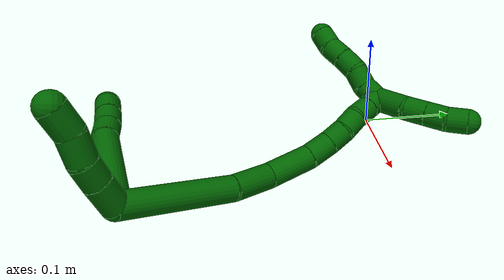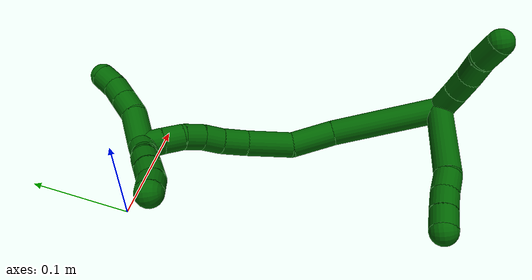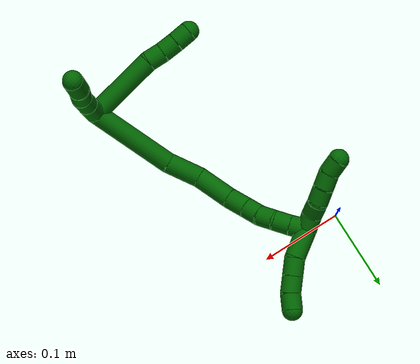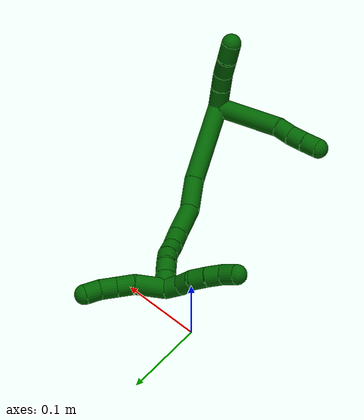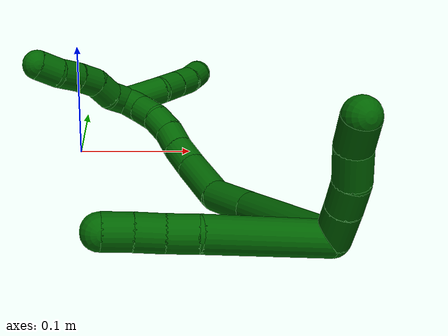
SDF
<sdf version="1.7">
 <world name="default">
  <model name="6">
   <static>0</static>
   <link name="6">
    <collision name="collision-cylinder-e_1_2_8">
     <pose>-0.03291 0.029757 -0.000173 -1.5766 -0.835656 0.839971</pose>
     <geometry><cylinder><radius>0.0125</radius><length>0.088738</length></cylinder></geometry>
     <surface>
      <friction><ode><mu>1.16</mu><mu2>1.16</mu2><slip1>0</slip1><slip2>0</slip2></ode></friction>
      <contact><ode><kp>1e+06</kp><kd>1</kd><max_vel>0</max_vel><min_depth>0.001</min_depth></ode></contact>
     </surface>
    </collision>
    <visual name="visual-cylinder-e_1_2_8">
     <pose>-0.03291 0.029757 -0.000173 -1.5766 -0.835656 0.839971</pose>
     <geometry><cylinder><radius>0.0125</radius><length>0.088738</length></cylinder></geometry>
     <material><ambient>0 0.392157 0.003922 1</ambient></material>
    </visual>
    <collision name="collision-cylinder-e_2_8_9">
     <pose>-0.073807 0.065797 -0.002733 -1.93396 -0.871306 1.1873</pose>
     <geometry><cylinder><radius>0.0125</radius><length>0.020877</length></cylinder></geometry>
     <surface>
      <friction><ode><mu>1.16</mu><mu2>1.16</mu2><slip1>0</slip1><slip2>0</slip2></ode></friction>
      <contact><ode><kp>1e+06</kp><kd>1</kd><max_vel>0</max_vel><min_depth>0.001</min_depth></ode></contact>
     </surface>
    </collision>
    <visual name="visual-cylinder-e_2_8_9">
     <pose>-0.073807 0.065797 -0.002733 -1.93396 -0.871306 1.1873</pose>
     <geometry><cylinder><radius>0.0125</radius><length>0.020877</length></cylinder></geometry>
     <material><ambient>0 0.392157 0.003922 1</ambient></material>
    </visual>
    <collision name="collision-cylinder-e_3_9_10">
     <pose>-0.089316 0.078722 -0.006415 -1.76329 -0.838122 0.991275</pose>
     <geometry><cylinder><radius>0.0125</radius><length>0.020238</length></cylinder></geometry>
     <surface>
      <friction><ode><mu>1.16</mu><mu2>1.16</mu2><slip1>0</slip1><slip2>0</slip2></ode></friction>
      <contact><ode><kp>1e+06</kp><kd>1</kd><max_vel>0</max_vel><min_depth>0.001</min_depth></ode></contact>
     </surface>
    </collision>
    <visual name="visual-cylinder-e_3_9_10">
     <pose>-0.089316 0.078722 -0.006415 -1.76329 -0.838122 0.991275</pose>
     <geometry><cylinder><radius>0.0125</radius><length>0.020238</length></cylinder></geometry>
     <material><ambient>0 0.392157 0.003922 1</ambient></material>
    </visual>
    <collision name="collision-cylinder-e_4_10_6">
     <pose>-0.104578 0.091744 -0.008661 -1.71877 -0.876036 0.995448</pose>
     <geometry><cylinder><radius>0.0125</radius><length>0.020148</length></cylinder></geometry>
     <surface>
      <friction><ode><mu>1.16</mu><mu2>1.16</mu2><slip1>0</slip1><slip2>0</slip2></ode></friction>
      <contact><ode><kp>1e+06</kp><kd>1</kd><max_vel>0</max_vel><min_depth>0.001</min_depth></ode></contact>
     </surface>
    </collision>
    <visual name="visual-cylinder-e_4_10_6">
     <pose>-0.104578 0.091744 -0.008661 -1.71877 -0.876036 0.995448</pose>
     <geometry><cylinder><radius>0.0125</radius><length>0.020148</length></cylinder></geometry>
     <material><ambient>0 0.392157 0.003922 1</ambient></material>
    </visual>
    <collision name="collision-cylinder-e_1_2_11">
     <pose>0.006728 0.009364 0.008479 -0.834945 0.489348 -0.220586</pose>
     <geometry><cylinder><radius>0.0125</radius><length>0.028625</length></cylinder></geometry>
     <surface>
      <friction><ode><mu>1.16</mu><mu2>1.16</mu2><slip1>0</slip1><slip2>0</slip2></ode></friction>
      <contact><ode><kp>1e+06</kp><kd>1</kd><max_vel>0</max_vel><min_depth>0.001</min_depth></ode></contact>
     </surface>
    </collision>
    <visual name="visual-cylinder-e_1_2_11">
     <pose>0.006728 0.009364 0.008479 -0.834945 0.489348 -0.220586</pose>
     <geometry><cylinder><radius>0.0125</radius><length>0.028625</length></cylinder></geometry>
     <material><ambient>0 0.392157 0.003922 1</ambient></material>
    </visual>
    <collision name="collision-cylinder-e_2_11_12">
     <pose>0.018561 0.026156 0.023114 -0.878815 0.486787 -0.232394</pose>
     <geometry><cylinder><radius>0.0125</radius><length>0.021827</length></cylinder></geometry>
     <surface>
      <friction><ode><mu>1.16</mu><mu2>1.16</mu2><slip1>0</slip1><slip2>0</slip2></ode></friction>
      <contact><ode><kp>1e+06</kp><kd>1</kd><max_vel>0</max_vel><min_depth>0.001</min_depth></ode></contact>
     </surface>
    </collision>
    <visual name="visual-cylinder-e_2_11_12">
     <pose>0.018561 0.026156 0.023114 -0.878815 0.486787 -0.232394</pose>
     <geometry><cylinder><radius>0.0125</radius><length>0.021827</length></cylinder></geometry>
     <material><ambient>0 0.392157 0.003922 1</ambient></material>
    </visual>
    <collision name="collision-cylinder-e_3_12_13">
     <pose>0.028465 0.043849 0.034516 -1.09829 0.39445 -0.243347</pose>
     <geometry><cylinder><radius>0.0125</radius><length>0.024977</length></cylinder></geometry>
     <surface>
      <friction><ode><mu>1.16</mu><mu2>1.16</mu2><slip1>0</slip1><slip2>0</slip2></ode></friction>
      <contact><ode><kp>1e+06</kp><kd>1</kd><max_vel>0</max_vel><min_depth>0.001</min_depth></ode></contact>
     </surface>
    </collision>
    <visual name="visual-cylinder-e_3_12_13">
     <pose>0.028465 0.043849 0.034516 -1.09829 0.39445 -0.243347</pose>
     <geometry><cylinder><radius>0.0125</radius><length>0.024977</length></cylinder></geometry>
     <material><ambient>0 0.392157 0.003922 1</ambient></material>
    </visual>
    <collision name="collision-cylinder-e_4_13_5">
     <pose>0.038016 0.062627 0.04724 -0.850049 0.397099 -0.181631</pose>
     <geometry><cylinder><radius>0.0125</radius><length>0.024571</length></cylinder></geometry>
     <surface>
      <friction><ode><mu>1.16</mu><mu2>1.16</mu2><slip1>0</slip1><slip2>0</slip2></ode></friction>
      <contact><ode><kp>1e+06</kp><kd>1</kd><max_vel>0</max_vel><min_depth>0.001</min_depth></ode></contact>
     </surface>
    </collision>
    <visual name="visual-cylinder-e_4_13_5">
     <pose>0.038016 0.062627 0.04724 -0.850049 0.397099 -0.181631</pose>
     <geometry><cylinder><radius>0.0125</radius><length>0.024571</length></cylinder></geometry>
     <material><ambient>0 0.392157 0.003922 1</ambient></material>
    </visual>
    <collision name="collision-cylinder-e_1_2_14">
     <pose>-0.006341 0.006561 -0.052258 -3.0167 -0.119827 1.52933</pose>
     <geometry><cylinder><radius>0.0125</radius><length>0.106098</length></cylinder></geometry>
     <surface>
      <friction><ode><mu>1.16</mu><mu2>1.16</mu2><slip1>0</slip1><slip2>0</slip2></ode></friction>
      <contact><ode><kp>1e+06</kp><kd>1</kd><max_vel>0</max_vel><min_depth>0.001</min_depth></ode></contact>
     </surface>
    </collision>
    <visual name="visual-cylinder-e_1_2_14">
     <pose>-0.006341 0.006561 -0.052258 -3.0167 -0.119827 1.52933</pose>
     <geometry><cylinder><radius>0.0125</radius><length>0.106098</length></cylinder></geometry>
     <material><ambient>0 0.392157 0.003922 1</ambient></material>
    </visual>
    <collision name="collision-cylinder-e_2_14_15">
     <pose>-0.017076 0.018955 -0.1244 -2.85618 -0.208909 1.26069</pose>
     <geometry><cylinder><radius>0.0125</radius><length>0.042364</length></cylinder></geometry>
     <surface>
      <friction><ode><mu>1.16</mu><mu2>1.16</mu2><slip1>0</slip1><slip2>0</slip2></ode></friction>
      <contact><ode><kp>1e+06</kp><kd>1</kd><max_vel>0</max_vel><min_depth>0.001</min_depth></ode></contact>
     </surface>
    </collision>
    <visual name="visual-cylinder-e_2_14_15">
     <pose>-0.017076 0.018955 -0.1244 -2.85618 -0.208909 1.26069</pose>
     <geometry><cylinder><radius>0.0125</radius><length>0.042364</length></cylinder></geometry>
     <material><ambient>0 0.392157 0.003922 1</ambient></material>
    </visual>
    <collision name="collision-cylinder-e_3_15_16">
     <pose>-0.019084 0.034026 -0.164946 -2.72123 0.105007 -0.483059</pose>
     <geometry><cylinder><radius>0.0125</radius><length>0.045517</length></cylinder></geometry>
     <surface>
      <friction><ode><mu>1.16</mu><mu2>1.16</mu2><slip1>0</slip1><slip2>0</slip2></ode></friction>
      <contact><ode><kp>1e+06</kp><kd>1</kd><max_vel>0</max_vel><min_depth>0.001</min_depth></ode></contact>
     </surface>
    </collision>
    <visual name="visual-cylinder-e_3_15_16">
     <pose>-0.019084 0.034026 -0.164946 -2.72123 0.105007 -0.483059</pose>
     <geometry><cylinder><radius>0.0125</radius><length>0.045517</length></cylinder></geometry>
     <material><ambient>0 0.392157 0.003922 1</ambient></material>
    </visual>
    <collision name="collision-cylinder-e_4_16_17">
     <pose>-0.015167 0.050301 -0.196178 -2.55406 0.12004 -0.392173</pose>
     <geometry><cylinder><radius>0.0125</radius><length>0.02558</length></cylinder></geometry>
     <surface>
      <friction><ode><mu>1.16</mu><mu2>1.16</mu2><slip1>0</slip1><slip2>0</slip2></ode></friction>
      <contact><ode><kp>1e+06</kp><kd>1</kd><max_vel>0</max_vel><min_depth>0.001</min_depth></ode></contact>
     </surface>
    </collision>
    <visual name="visual-cylinder-e_4_16_17">
     <pose>-0.015167 0.050301 -0.196178 -2.55406 0.12004 -0.392173</pose>
     <geometry><cylinder><radius>0.0125</radius><length>0.02558</length></cylinder></geometry>
     <material><ambient>0 0.392157 0.003922 1</ambient></material>
    </visual>
    <collision name="collision-cylinder-e_5_17_18">
     <pose>-0.011402 0.063774 -0.214275 -2.43436 0.221754 -0.585862</pose>
     <geometry><cylinder><radius>0.0125</radius><length>0.020304</length></cylinder></geometry>
     <surface>
      <friction><ode><mu>1.16</mu><mu2>1.16</mu2><slip1>0</slip1><slip2>0</slip2></ode></friction>
      <contact><ode><kp>1e+06</kp><kd>1</kd><max_vel>0</max_vel><min_depth>0.001</min_depth></ode></contact>
     </surface>
    </collision>
    <visual name="visual-cylinder-e_5_17_18">
     <pose>-0.011402 0.063774 -0.214275 -2.43436 0.221754 -0.585862</pose>
     <geometry><cylinder><radius>0.0125</radius><length>0.020304</length></cylinder></geometry>
     <material><ambient>0 0.392157 0.003922 1</ambient></material>
    </visual>
    <collision name="collision-cylinder-e_6_18_19">
     <pose>-0.00894 0.077193 -0.228993 -2.37071 0.022839 -0.056278</pose>
     <geometry><cylinder><radius>0.0125</radius><length>0.020052</length></cylinder></geometry>
     <surface>
      <friction><ode><mu>1.16</mu><mu2>1.16</mu2><slip1>0</slip1><slip2>0</slip2></ode></friction>
      <contact><ode><kp>1e+06</kp><kd>1</kd><max_vel>0</max_vel><min_depth>0.001</min_depth></ode></contact>
     </surface>
    </collision>
    <visual name="visual-cylinder-e_6_18_19">
     <pose>-0.00894 0.077193 -0.228993 -2.37071 0.022839 -0.056278</pose>
     <geometry><cylinder><radius>0.0125</radius><length>0.020052</length></cylinder></geometry>
     <material><ambient>0 0.392157 0.003922 1</ambient></material>
    </visual>
    <collision name="collision-cylinder-e_7_19_20">
     <pose>-0.010243 0.089531 -0.244534 -2.57149 -0.153183 0.512274</pose>
     <geometry><cylinder><radius>0.0125</radius><length>0.020075</length></cylinder></geometry>
     <surface>
      <friction><ode><mu>1.16</mu><mu2>1.16</mu2><slip1>0</slip1><slip2>0</slip2></ode></friction>
      <contact><ode><kp>1e+06</kp><kd>1</kd><max_vel>0</max_vel><min_depth>0.001</min_depth></ode></contact>
     </surface>
    </collision>
    <visual name="visual-cylinder-e_7_19_20">
     <pose>-0.010243 0.089531 -0.244534 -2.57149 -0.153183 0.512274</pose>
     <geometry><cylinder><radius>0.0125</radius><length>0.020075</length></cylinder></geometry>
     <material><ambient>0 0.392157 0.003922 1</ambient></material>
    </visual>
    <collision name="collision-cylinder-e_8_20_1">
     <pose>-0.013759 0.100487 -0.260933 -2.5335 -0.199672 0.618018</pose>
     <geometry><cylinder><radius>0.0125</radius><length>0.020009</length></cylinder></geometry>
     <surface>
      <friction><ode><mu>1.16</mu><mu2>1.16</mu2><slip1>0</slip1><slip2>0</slip2></ode></friction>
      <contact><ode><kp>1e+06</kp><kd>1</kd><max_vel>0</max_vel><min_depth>0.001</min_depth></ode></contact>
     </surface>
    </collision>
    <visual name="visual-cylinder-e_8_20_1">
     <pose>-0.013759 0.100487 -0.260933 -2.5335 -0.199672 0.618018</pose>
     <geometry><cylinder><radius>0.0125</radius><length>0.020009</length></cylinder></geometry>
     <material><ambient>0 0.392157 0.003922 1</ambient></material>
    </visual>
    <collision name="collision-cylinder-e_1_1_21">
     <pose>0.00069 0.09927 -0.274953 2.29005 1.06669 1.83159</pose>
     <geometry><cylinder><radius>0.0125</radius><length>0.037535</length></cylinder></geometry>
     <surface>
      <friction><ode><mu>1.16</mu><mu2>1.16</mu2><slip1>0</slip1><slip2>0</slip2></ode></friction>
      <contact><ode><kp>1e+06</kp><kd>1</kd><max_vel>0</max_vel><min_depth>0.001</min_depth></ode></contact>
     </surface>
    </collision>
    <visual name="visual-cylinder-e_1_1_21">
     <pose>0.00069 0.09927 -0.274953 2.29005 1.06669 1.83159</pose>
     <geometry><cylinder><radius>0.0125</radius><length>0.037535</length></cylinder></geometry>
     <material><ambient>0 0.392157 0.003922 1</ambient></material>
    </visual>
    <collision name="collision-cylinder-e_2_21_22">
     <pose>0.025278 0.088911 -0.28721 2.62879 0.846679 2.08766</pose>
     <geometry><cylinder><radius>0.0125</radius><length>0.021775</length></cylinder></geometry>
     <surface>
      <friction><ode><mu>1.16</mu><mu2>1.16</mu2><slip1>0</slip1><slip2>0</slip2></ode></friction>
      <contact><ode><kp>1e+06</kp><kd>1</kd><max_vel>0</max_vel><min_depth>0.001</min_depth></ode></contact>
     </surface>
    </collision>
    <visual name="visual-cylinder-e_2_21_22">
     <pose>0.025278 0.088911 -0.28721 2.62879 0.846679 2.08766</pose>
     <geometry><cylinder><radius>0.0125</radius><length>0.021775</length></cylinder></geometry>
     <material><ambient>0 0.392157 0.003922 1</ambient></material>
    </visual>
    <collision name="collision-cylinder-e_3_22_23">
     <pose>0.04117 0.082046 -0.299431 2.63085 0.849368 2.09443</pose>
     <geometry><cylinder><radius>0.0125</radius><length>0.020605</length></cylinder></geometry>
     <surface>
      <friction><ode><mu>1.16</mu><mu2>1.16</mu2><slip1>0</slip1><slip2>0</slip2></ode></friction>
      <contact><ode><kp>1e+06</kp><kd>1</kd><max_vel>0</max_vel><min_depth>0.001</min_depth></ode></contact>
     </surface>
    </collision>
    <visual name="visual-cylinder-e_3_22_23">
     <pose>0.04117 0.082046 -0.299431 2.63085 0.849368 2.09443</pose>
     <geometry><cylinder><radius>0.0125</radius><length>0.020605</length></cylinder></geometry>
     <material><ambient>0 0.392157 0.003922 1</ambient></material>
    </visual>
    <collision name="collision-cylinder-e_4_23_4">
     <pose>0.055727 0.077147 -0.312568 2.92659 0.746687 2.60392</pose>
     <geometry><cylinder><radius>0.0125</radius><length>0.020085</length></cylinder></geometry>
     <surface>
      <friction><ode><mu>1.16</mu><mu2>1.16</mu2><slip1>0</slip1><slip2>0</slip2></ode></friction>
      <contact><ode><kp>1e+06</kp><kd>1</kd><max_vel>0</max_vel><min_depth>0.001</min_depth></ode></contact>
     </surface>
    </collision>
    <visual name="visual-cylinder-e_4_23_4">
     <pose>0.055727 0.077147 -0.312568 2.92659 0.746687 2.60392</pose>
     <geometry><cylinder><radius>0.0125</radius><length>0.020085</length></cylinder></geometry>
     <material><ambient>0 0.392157 0.003922 1</ambient></material>
    </visual>
    <collision name="collision-cylinder-e_1_1_24">
     <pose>-0.020834 0.113359 -0.264373 -1.00585 -0.534184 0.298806</pose>
     <geometry><cylinder><radius>0.0125</radius><length>0.02</length></cylinder></geometry>
     <surface>
      <friction><ode><mu>1.16</mu><mu2>1.16</mu2><slip1>0</slip1><slip2>0</slip2></ode></friction>
      <contact><ode><kp>1e+06</kp><kd>1</kd><max_vel>0</max_vel><min_depth>0.001</min_depth></ode></contact>
     </surface>
    </collision>
    <visual name="visual-cylinder-e_1_1_24">
     <pose>-0.020834 0.113359 -0.264373 -1.00585 -0.534184 0.298806</pose>
     <geometry><cylinder><radius>0.0125</radius><length>0.02</length></cylinder></geometry>
     <material><ambient>0 0.392157 0.003922 1</ambient></material>
    </visual>
    <collision name="collision-cylinder-e_2_24_25">
     <pose>-0.028074 0.129574 -0.255845 -1.15778 -0.216491 0.141812</pose>
     <geometry><cylinder><radius>0.0125</radius><length>0.02</length></cylinder></geometry>
     <surface>
      <friction><ode><mu>1.16</mu><mu2>1.16</mu2><slip1>0</slip1><slip2>0</slip2></ode></friction>
      <contact><ode><kp>1e+06</kp><kd>1</kd><max_vel>0</max_vel><min_depth>0.001</min_depth></ode></contact>
     </surface>
    </collision>
    <visual name="visual-cylinder-e_2_24_25">
     <pose>-0.028074 0.129574 -0.255845 -1.15778 -0.216491 0.141812</pose>
     <geometry><cylinder><radius>0.0125</radius><length>0.02</length></cylinder></geometry>
     <material><ambient>0 0.392157 0.003922 1</ambient></material>
    </visual>
    <collision name="collision-cylinder-e_3_25_26">
     <pose>-0.03536 0.145851 -0.24747 -1.02489 -0.539575 0.308662</pose>
     <geometry><cylinder><radius>0.0125</radius><length>0.02</length></cylinder></geometry>
     <surface>
      <friction><ode><mu>1.16</mu><mu2>1.16</mu2><slip1>0</slip1><slip2>0</slip2></ode></friction>
      <contact><ode><kp>1e+06</kp><kd>1</kd><max_vel>0</max_vel><min_depth>0.001</min_depth></ode></contact>
     </surface>
    </collision>
    <visual name="visual-cylinder-e_3_25_26">
     <pose>-0.03536 0.145851 -0.24747 -1.02489 -0.539575 0.308662</pose>
     <geometry><cylinder><radius>0.0125</radius><length>0.02</length></cylinder></geometry>
     <material><ambient>0 0.392157 0.003922 1</ambient></material>
    </visual>
    <collision name="collision-cylinder-e_4_26_27">
     <pose>-0.0464 0.159985 -0.238669 -1.00203 -0.631429 0.354006</pose>
     <geometry><cylinder><radius>0.0125</radius><length>0.02</length></cylinder></geometry>
     <surface>
      <friction><ode><mu>1.16</mu><mu2>1.16</mu2><slip1>0</slip1><slip2>0</slip2></ode></friction>
      <contact><ode><kp>1e+06</kp><kd>1</kd><max_vel>0</max_vel><min_depth>0.001</min_depth></ode></contact>
     </surface>
    </collision>
    <visual name="visual-cylinder-e_4_26_27">
     <pose>-0.0464 0.159985 -0.238669 -1.00203 -0.631429 0.354006</pose>
     <geometry><cylinder><radius>0.0125</radius><length>0.02</length></cylinder></geometry>
     <material><ambient>0 0.392157 0.003922 1</ambient></material>
    </visual>
    <collision name="collision-cylinder-e_5_27_3">
     <pose>-0.057462 0.175069 -0.232134 -1.31266 -0.542 0.42164</pose>
     <geometry><cylinder><radius>0.0125</radius><length>0.02</length></cylinder></geometry>
     <surface>
      <friction><ode><mu>1.16</mu><mu2>1.16</mu2><slip1>0</slip1><slip2>0</slip2></ode></friction>
      <contact><ode><kp>1e+06</kp><kd>1</kd><max_vel>0</max_vel><min_depth>0.001</min_depth></ode></contact>
     </surface>
    </collision>
    <visual name="visual-cylinder-e_5_27_3">
     <pose>-0.057462 0.175069 -0.232134 -1.31266 -0.542 0.42164</pose>
     <geometry><cylinder><radius>0.0125</radius><length>0.02</length></cylinder></geometry>
     <material><ambient>0 0.392157 0.003922 1</ambient></material>
    </visual>
    <collision name="collision-sphere-3">
     <pose>-0.06262 0.183352 -0.229947 0 -0 0</pose>
     <geometry><sphere><radius>0.0125</radius></sphere></geometry>
     <surface>
      <friction><ode><mu>1.16</mu><mu2>1.16</mu2><slip1>0</slip1><slip2>0</slip2></ode></friction>
      <contact><ode><kp>1e+06</kp><kd>1</kd><max_vel>0</max_vel><min_depth>0.001</min_depth></ode></contact>
     </surface>
    </collision>
    <visual name="visual-sphere-3">
     <pose>-0.06262 0.183352 -0.229947 0 -0 0</pose>
     <geometry><sphere><radius>0.0125</radius></sphere></geometry>
     <material><ambient>0 0.392157 0.003922 1</ambient></material>
    </visual>
    <collision name="collision-sphere-27">
     <pose>-0.052303 0.166786 -0.234321 0 -0 0</pose>
     <geometry><sphere><radius>0.0125</radius></sphere></geometry>
     <surface>
      <friction><ode><mu>1.16</mu><mu2>1.16</mu2><slip1>0</slip1><slip2>0</slip2></ode></friction>
      <contact><ode><kp>1e+06</kp><kd>1</kd><max_vel>0</max_vel><min_depth>0.001</min_depth></ode></contact>
     </surface>
    </collision>
    <visual name="visual-sphere-27">
     <pose>-0.052303 0.166786 -0.234321 0 -0 0</pose>
     <geometry><sphere><radius>0.0125</radius></sphere></geometry>
     <material><ambient>0 0.392157 0.003922 1</ambient></material>
    </visual>
    <collision name="collision-sphere-26">
     <pose>-0.040497 0.153184 -0.243016 0 -0 0</pose>
     <geometry><sphere><radius>0.0125</radius></sphere></geometry>
     <surface>
      <friction><ode><mu>1.16</mu><mu2>1.16</mu2><slip1>0</slip1><slip2>0</slip2></ode></friction>
      <contact><ode><kp>1e+06</kp><kd>1</kd><max_vel>0</max_vel><min_depth>0.001</min_depth></ode></contact>
     </surface>
    </collision>
    <visual name="visual-sphere-26">
     <pose>-0.040497 0.153184 -0.243016 0 -0 0</pose>
     <geometry><sphere><radius>0.0125</radius></sphere></geometry>
     <material><ambient>0 0.392157 0.003922 1</ambient></material>
    </visual>
    <collision name="collision-sphere-25">
     <pose>-0.030222 0.138519 -0.251925 0 -0 0</pose>
     <geometry><sphere><radius>0.0125</radius></sphere></geometry>
     <surface>
      <friction><ode><mu>1.16</mu><mu2>1.16</mu2><slip1>0</slip1><slip2>0</slip2></ode></friction>
      <contact><ode><kp>1e+06</kp><kd>1</kd><max_vel>0</max_vel><min_depth>0.001</min_depth></ode></contact>
     </surface>
    </collision>
    <visual name="visual-sphere-25">
     <pose>-0.030222 0.138519 -0.251925 0 -0 0</pose>
     <geometry><sphere><radius>0.0125</radius></sphere></geometry>
     <material><ambient>0 0.392157 0.003922 1</ambient></material>
    </visual>
    <collision name="collision-sphere-24">
     <pose>-0.025926 0.120628 -0.259765 0 -0 0</pose>
     <geometry><sphere><radius>0.0125</radius></sphere></geometry>
     <surface>
      <friction><ode><mu>1.16</mu><mu2>1.16</mu2><slip1>0</slip1><slip2>0</slip2></ode></friction>
      <contact><ode><kp>1e+06</kp><kd>1</kd><max_vel>0</max_vel><min_depth>0.001</min_depth></ode></contact>
     </surface>
    </collision>
    <visual name="visual-sphere-24">
     <pose>-0.025926 0.120628 -0.259765 0 -0 0</pose>
     <geometry><sphere><radius>0.0125</radius></sphere></geometry>
     <material><ambient>0 0.392157 0.003922 1</ambient></material>
    </visual>
    <collision name="collision-sphere-4">
     <pose>0.062547 0.075575 -0.319769 0 -0 0</pose>
     <geometry><sphere><radius>0.0125</radius></sphere></geometry>
     <surface>
      <friction><ode><mu>1.16</mu><mu2>1.16</mu2><slip1>0</slip1><slip2>0</slip2></ode></friction>
      <contact><ode><kp>1e+06</kp><kd>1</kd><max_vel>0</max_vel><min_depth>0.001</min_depth></ode></contact>
     </surface>
    </collision>
    <visual name="visual-sphere-4">
     <pose>0.062547 0.075575 -0.319769 0 -0 0</pose>
     <geometry><sphere><radius>0.0125</radius></sphere></geometry>
     <material><ambient>0 0.392157 0.003922 1</ambient></material>
    </visual>
    <collision name="collision-sphere-23">
     <pose>0.048906 0.07872 -0.305367 0 -0 0</pose>
     <geometry><sphere><radius>0.0125</radius></sphere></geometry>
     <surface>
      <friction><ode><mu>1.16</mu><mu2>1.16</mu2><slip1>0</slip1><slip2>0</slip2></ode></friction>
      <contact><ode><kp>1e+06</kp><kd>1</kd><max_vel>0</max_vel><min_depth>0.001</min_depth></ode></contact>
     </surface>
    </collision>
    <visual name="visual-sphere-23">
     <pose>0.048906 0.07872 -0.305367 0 -0 0</pose>
     <geometry><sphere><radius>0.0125</radius></sphere></geometry>
     <material><ambient>0 0.392157 0.003922 1</ambient></material>
    </visual>
    <collision name="collision-sphere-22">
     <pose>0.033434 0.085372 -0.293495 0 -0 0</pose>
     <geometry><sphere><radius>0.0125</radius></sphere></geometry>
     <surface>
      <friction><ode><mu>1.16</mu><mu2>1.16</mu2><slip1>0</slip1><slip2>0</slip2></ode></friction>
      <contact><ode><kp>1e+06</kp><kd>1</kd><max_vel>0</max_vel><min_depth>0.001</min_depth></ode></contact>
     </surface>
    </collision>
    <visual name="visual-sphere-22">
     <pose>0.033434 0.085372 -0.293495 0 -0 0</pose>
     <geometry><sphere><radius>0.0125</radius></sphere></geometry>
     <material><ambient>0 0.392157 0.003922 1</ambient></material>
    </visual>
    <collision name="collision-sphere-21">
     <pose>0.017123 0.09245 -0.280925 0 -0 0</pose>
     <geometry><sphere><radius>0.0125</radius></sphere></geometry>
     <surface>
      <friction><ode><mu>1.16</mu><mu2>1.16</mu2><slip1>0</slip1><slip2>0</slip2></ode></friction>
      <contact><ode><kp>1e+06</kp><kd>1</kd><max_vel>0</max_vel><min_depth>0.001</min_depth></ode></contact>
     </surface>
    </collision>
    <visual name="visual-sphere-21">
     <pose>0.017123 0.09245 -0.280925 0 -0 0</pose>
     <geometry><sphere><radius>0.0125</radius></sphere></geometry>
     <material><ambient>0 0.392157 0.003922 1</ambient></material>
    </visual>
    <collision name="collision-sphere-1">
     <pose>-0.015743 0.106089 -0.268981 0 -0 0</pose>
     <geometry><sphere><radius>0.0125</radius></sphere></geometry>
     <surface>
      <friction><ode><mu>1.16</mu><mu2>1.16</mu2><slip1>0</slip1><slip2>0</slip2></ode></friction>
      <contact><ode><kp>1e+06</kp><kd>1</kd><max_vel>0</max_vel><min_depth>0.001</min_depth></ode></contact>
     </surface>
    </collision>
    <visual name="visual-sphere-1">
     <pose>-0.015743 0.106089 -0.268981 0 -0 0</pose>
     <geometry><sphere><radius>0.0125</radius></sphere></geometry>
     <material><ambient>0 0.392157 0.003922 1</ambient></material>
    </visual>
    <collision name="collision-sphere-11">
     <pose>0.013455 0.018729 0.016959 0 -0 0</pose>
     <geometry><sphere><radius>0.0125</radius></sphere></geometry>
     <surface>
      <friction><ode><mu>1.16</mu><mu2>1.16</mu2><slip1>0</slip1><slip2>0</slip2></ode></friction>
      <contact><ode><kp>1e+06</kp><kd>1</kd><max_vel>0</max_vel><min_depth>0.001</min_depth></ode></contact>
     </surface>
    </collision>
    <visual name="visual-sphere-11">
     <pose>0.013455 0.018729 0.016959 0 -0 0</pose>
     <geometry><sphere><radius>0.0125</radius></sphere></geometry>
     <material><ambient>0 0.392157 0.003922 1</ambient></material>
    </visual>
    <collision name="collision-sphere-6">
     <pose>-0.112316 0.098123 -0.009612 0 -0 0</pose>
     <geometry><sphere><radius>0.0125</radius></sphere></geometry>
     <surface>
      <friction><ode><mu>1.16</mu><mu2>1.16</mu2><slip1>0</slip1><slip2>0</slip2></ode></friction>
      <contact><ode><kp>1e+06</kp><kd>1</kd><max_vel>0</max_vel><min_depth>0.001</min_depth></ode></contact>
     </surface>
    </collision>
    <visual name="visual-sphere-6">
     <pose>-0.112316 0.098123 -0.009612 0 -0 0</pose>
     <geometry><sphere><radius>0.0125</radius></sphere></geometry>
     <material><ambient>0 0.392157 0.003922 1</ambient></material>
    </visual>
    <collision name="collision-sphere-10">
     <pose>-0.096839 0.085365 -0.00771 0 -0 0</pose>
     <geometry><sphere><radius>0.0125</radius></sphere></geometry>
     <surface>
      <friction><ode><mu>1.16</mu><mu2>1.16</mu2><slip1>0</slip1><slip2>0</slip2></ode></friction>
      <contact><ode><kp>1e+06</kp><kd>1</kd><max_vel>0</max_vel><min_depth>0.001</min_depth></ode></contact>
     </surface>
    </collision>
    <visual name="visual-sphere-10">
     <pose>-0.096839 0.085365 -0.00771 0 -0 0</pose>
     <geometry><sphere><radius>0.0125</radius></sphere></geometry>
     <material><ambient>0 0.392157 0.003922 1</ambient></material>
    </visual>
    <collision name="collision-sphere-9">
     <pose>-0.081794 0.072079 -0.00512 0 -0 0</pose>
     <geometry><sphere><radius>0.0125</radius></sphere></geometry>
     <surface>
      <friction><ode><mu>1.16</mu><mu2>1.16</mu2><slip1>0</slip1><slip2>0</slip2></ode></friction>
      <contact><ode><kp>1e+06</kp><kd>1</kd><max_vel>0</max_vel><min_depth>0.001</min_depth></ode></contact>
     </surface>
    </collision>
    <visual name="visual-sphere-9">
     <pose>-0.081794 0.072079 -0.00512 0 -0 0</pose>
     <geometry><sphere><radius>0.0125</radius></sphere></geometry>
     <material><ambient>0 0.392157 0.003922 1</ambient></material>
    </visual>
    <collision name="collision-sphere-2">
     <geometry><sphere><radius>0.0125</radius></sphere></geometry>
     <surface>
      <friction><ode><mu>1.16</mu><mu2>1.16</mu2><slip1>0</slip1><slip2>0</slip2></ode></friction>
      <contact><ode><kp>1e+06</kp><kd>1</kd><max_vel>0</max_vel><min_depth>0.001</min_depth></ode></contact>
     </surface>
    </collision>
    <visual name="visual-sphere-2">
     <geometry><sphere><radius>0.0125</radius></sphere></geometry>
     <material><ambient>0 0.392157 0.003922 1</ambient></material>
    </visual>
    <collision name="collision-sphere-19">
     <pose>-0.008711 0.084177 -0.236183 0 -0 0</pose>
     <geometry><sphere><radius>0.0125</radius></sphere></geometry>
     <surface>
      <friction><ode><mu>1.16</mu><mu2>1.16</mu2><slip1>0</slip1><slip2>0</slip2></ode></friction>
      <contact><ode><kp>1e+06</kp><kd>1</kd><max_vel>0</max_vel><min_depth>0.001</min_depth></ode></contact>
     </surface>
    </collision>
    <visual name="visual-sphere-19">
     <pose>-0.008711 0.084177 -0.236183 0 -0 0</pose>
     <geometry><sphere><radius>0.0125</radius></sphere></geometry>
     <material><ambient>0 0.392157 0.003922 1</ambient></material>
    </visual>
    <collision name="collision-sphere-8">
     <pose>-0.06582 0.059515 -0.000346 0 -0 0</pose>
     <geometry><sphere><radius>0.0125</radius></sphere></geometry>
     <surface>
      <friction><ode><mu>1.16</mu><mu2>1.16</mu2><slip1>0</slip1><slip2>0</slip2></ode></friction>
      <contact><ode><kp>1e+06</kp><kd>1</kd><max_vel>0</max_vel><min_depth>0.001</min_depth></ode></contact>
     </surface>
    </collision>
    <visual name="visual-sphere-8">
     <pose>-0.06582 0.059515 -0.000346 0 -0 0</pose>
     <geometry><sphere><radius>0.0125</radius></sphere></geometry>
     <material><ambient>0 0.392157 0.003922 1</ambient></material>
    </visual>
    <collision name="collision-sphere-12">
     <pose>0.023666 0.033583 0.029268 0 -0 0</pose>
     <geometry><sphere><radius>0.0125</radius></sphere></geometry>
     <surface>
      <friction><ode><mu>1.16</mu><mu2>1.16</mu2><slip1>0</slip1><slip2>0</slip2></ode></friction>
      <contact><ode><kp>1e+06</kp><kd>1</kd><max_vel>0</max_vel><min_depth>0.001</min_depth></ode></contact>
     </surface>
    </collision>
    <visual name="visual-sphere-12">
     <pose>0.023666 0.033583 0.029268 0 -0 0</pose>
     <geometry><sphere><radius>0.0125</radius></sphere></geometry>
     <material><ambient>0 0.392157 0.003922 1</ambient></material>
    </visual>
    <collision name="collision-sphere-13">
     <pose>0.033265 0.054115 0.039763 0 -0 0</pose>
     <geometry><sphere><radius>0.0125</radius></sphere></geometry>
     <surface>
      <friction><ode><mu>1.16</mu><mu2>1.16</mu2><slip1>0</slip1><slip2>0</slip2></ode></friction>
      <contact><ode><kp>1e+06</kp><kd>1</kd><max_vel>0</max_vel><min_depth>0.001</min_depth></ode></contact>
     </surface>
    </collision>
    <visual name="visual-sphere-13">
     <pose>0.033265 0.054115 0.039763 0 -0 0</pose>
     <geometry><sphere><radius>0.0125</radius></sphere></geometry>
     <material><ambient>0 0.392157 0.003922 1</ambient></material>
    </visual>
    <collision name="collision-sphere-5">
     <pose>0.042767 0.071139 0.054716 0 -0 0</pose>
     <geometry><sphere><radius>0.0125</radius></sphere></geometry>
     <surface>
      <friction><ode><mu>1.16</mu><mu2>1.16</mu2><slip1>0</slip1><slip2>0</slip2></ode></friction>
      <contact><ode><kp>1e+06</kp><kd>1</kd><max_vel>0</max_vel><min_depth>0.001</min_depth></ode></contact>
     </surface>
    </collision>
    <visual name="visual-sphere-5">
     <pose>0.042767 0.071139 0.054716 0 -0 0</pose>
     <geometry><sphere><radius>0.0125</radius></sphere></geometry>
     <material><ambient>0 0.392157 0.003922 1</ambient></material>
    </visual>
    <collision name="collision-sphere-14">
     <pose>-0.012683 0.013121 -0.104517 0 -0 0</pose>
     <geometry><sphere><radius>0.0125</radius></sphere></geometry>
     <surface>
      <friction><ode><mu>1.16</mu><mu2>1.16</mu2><slip1>0</slip1><slip2>0</slip2></ode></friction>
      <contact><ode><kp>1e+06</kp><kd>1</kd><max_vel>0</max_vel><min_depth>0.001</min_depth></ode></contact>
     </surface>
    </collision>
    <visual name="visual-sphere-14">
     <pose>-0.012683 0.013121 -0.104517 0 -0 0</pose>
     <geometry><sphere><radius>0.0125</radius></sphere></geometry>
     <material><ambient>0 0.392157 0.003922 1</ambient></material>
    </visual>
    <collision name="collision-sphere-15">
     <pose>-0.021469 0.02479 -0.144283 0 -0 0</pose>
     <geometry><sphere><radius>0.0125</radius></sphere></geometry>
     <surface>
      <friction><ode><mu>1.16</mu><mu2>1.16</mu2><slip1>0</slip1><slip2>0</slip2></ode></friction>
      <contact><ode><kp>1e+06</kp><kd>1</kd><max_vel>0</max_vel><min_depth>0.001</min_depth></ode></contact>
     </surface>
    </collision>
    <visual name="visual-sphere-15">
     <pose>-0.021469 0.02479 -0.144283 0 -0 0</pose>
     <geometry><sphere><radius>0.0125</radius></sphere></geometry>
     <material><ambient>0 0.392157 0.003922 1</ambient></material>
    </visual>
    <collision name="collision-sphere-16">
     <pose>-0.016698 0.043263 -0.185609 0 -0 0</pose>
     <geometry><sphere><radius>0.0125</radius></sphere></geometry>
     <surface>
      <friction><ode><mu>1.16</mu><mu2>1.16</mu2><slip1>0</slip1><slip2>0</slip2></ode></friction>
      <contact><ode><kp>1e+06</kp><kd>1</kd><max_vel>0</max_vel><min_depth>0.001</min_depth></ode></contact>
     </surface>
    </collision>
    <visual name="visual-sphere-16">
     <pose>-0.016698 0.043263 -0.185609 0 -0 0</pose>
     <geometry><sphere><radius>0.0125</radius></sphere></geometry>
     <material><ambient>0 0.392157 0.003922 1</ambient></material>
    </visual>
    <collision name="collision-sphere-17">
     <pose>-0.013635 0.05734 -0.206747 0 -0 0</pose>
     <geometry><sphere><radius>0.0125</radius></sphere></geometry>
     <surface>
      <friction><ode><mu>1.16</mu><mu2>1.16</mu2><slip1>0</slip1><slip2>0</slip2></ode></friction>
      <contact><ode><kp>1e+06</kp><kd>1</kd><max_vel>0</max_vel><min_depth>0.001</min_depth></ode></contact>
     </surface>
    </collision>
    <visual name="visual-sphere-17">
     <pose>-0.013635 0.05734 -0.206747 0 -0 0</pose>
     <geometry><sphere><radius>0.0125</radius></sphere></geometry>
     <material><ambient>0 0.392157 0.003922 1</ambient></material>
    </visual>
    <collision name="collision-sphere-18">
     <pose>-0.009169 0.070209 -0.221803 0 -0 0</pose>
     <geometry><sphere><radius>0.0125</radius></sphere></geometry>
     <surface>
      <friction><ode><mu>1.16</mu><mu2>1.16</mu2><slip1>0</slip1><slip2>0</slip2></ode></friction>
      <contact><ode><kp>1e+06</kp><kd>1</kd><max_vel>0</max_vel><min_depth>0.001</min_depth></ode></contact>
     </surface>
    </collision>
    <visual name="visual-sphere-18">
     <pose>-0.009169 0.070209 -0.221803 0 -0 0</pose>
     <geometry><sphere><radius>0.0125</radius></sphere></geometry>
     <material><ambient>0 0.392157 0.003922 1</ambient></material>
    </visual>
    <collision name="collision-sphere-20">
     <pose>-0.011774 0.094885 -0.252885 0 -0 0</pose>
     <geometry><sphere><radius>0.0125</radius></sphere></geometry>
     <surface>
      <friction><ode><mu>1.16</mu><mu2>1.16</mu2><slip1>0</slip1><slip2>0</slip2></ode></friction>
      <contact><ode><kp>1e+06</kp><kd>1</kd><max_vel>0</max_vel><min_depth>0.001</min_depth></ode></contact>
     </surface>
    </collision>
    <visual name="visual-sphere-20">
     <pose>-0.011774 0.094885 -0.252885 0 -0 0</pose>
     <geometry><sphere><radius>0.0125</radius></sphere></geometry>
     <material><ambient>0 0.392157 0.003922 1</ambient></material>
    </visual>
    <inertial>
     <pose>-0.014528 0.060391 -0.125082 0 -0 0</pose>
     <mass>0.75</mass>
     <inertia>
      <ixx>0.000203</ixx>
      <ixy>0</ixy>
      <ixz>0</ixz>
      <iyy>0.000207</iyy>
      <iyz>0</iyz>
      <izz>-4.2e-05</izz>
     </inertia>
    </inertial>
   </link>
   <pose>0.181009 -0.256975 0.044781 1.25177 -0.552758 0.420594</pose>
  </model>
 </world>
</sdf>
